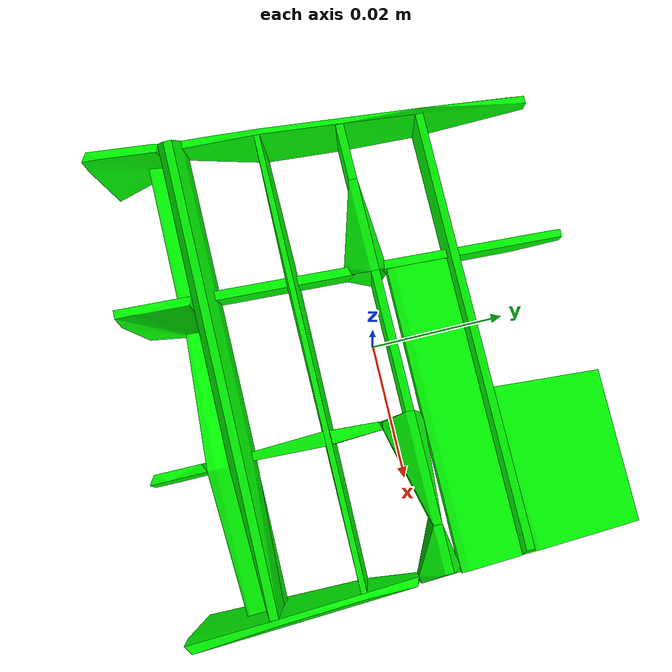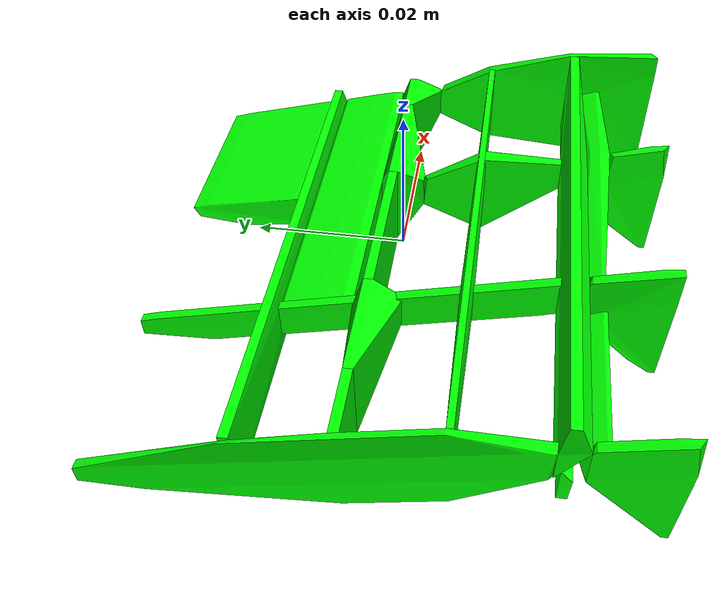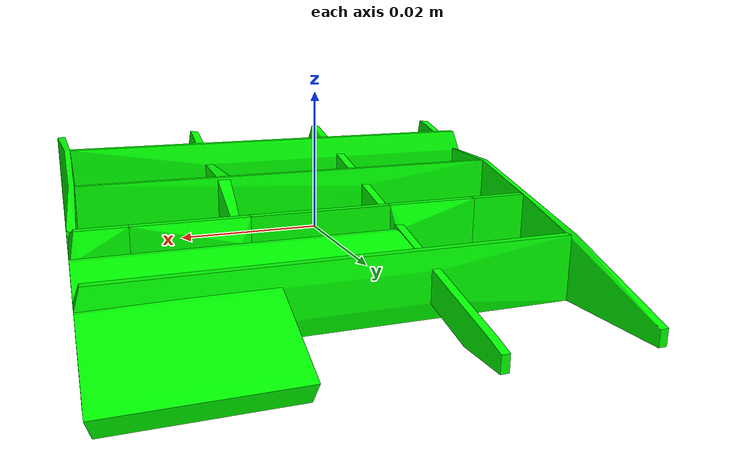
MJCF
<mujoco model="shapenet4-18">
  <asset>
    <mesh file="meshes/shapenet4-18/shapenet4-18_0.stl" name="shapenet4-18_0" scale="0.1 0.1 0.1"/>
    <mesh file="meshes/shapenet4-18/shapenet4-18_1.stl" name="shapenet4-18_1" scale="0.1 0.1 0.1"/>
    <mesh file="meshes/shapenet4-18/shapenet4-18_2.stl" name="shapenet4-18_2" scale="0.1 0.1 0.1"/>
    <mesh file="meshes/shapenet4-18/shapenet4-18_3.stl" name="shapenet4-18_3" scale="0.1 0.1 0.1"/>
    <mesh file="meshes/shapenet4-18/shapenet4-18_4.stl" name="shapenet4-18_4" scale="0.1 0.1 0.1"/>
    <mesh file="meshes/shapenet4-18/shapenet4-18_5.stl" name="shapenet4-18_5" scale="0.1 0.1 0.1"/>
    <mesh file="meshes/shapenet4-18/shapenet4-18_6.stl" name="shapenet4-18_6" scale="0.1 0.1 0.1"/>
    <mesh file="meshes/shapenet4-18/shapenet4-18_7.stl" name="shapenet4-18_7" scale="0.1 0.1 0.1"/>
    <mesh file="meshes/shapenet4-18/shapenet4-18_8.stl" name="shapenet4-18_8" scale="0.1 0.1 0.1"/>
    <mesh file="meshes/shapenet4-18/shapenet4-18_9.stl" name="shapenet4-18_9" scale="0.1 0.1 0.1"/>
    <mesh file="meshes/shapenet4-18/shapenet4-18_10.stl" name="shapenet4-18_10" scale="0.1 0.1 0.1"/>
    <mesh file="meshes/shapenet4-18/shapenet4-18_11.stl" name="shapenet4-18_11" scale="0.1 0.1 0.1"/>
    <mesh file="meshes/shapenet4-18/shapenet4-18_12.stl" name="shapenet4-18_12" scale="0.1 0.1 0.1"/>
    <mesh file="meshes/shapenet4-18/shapenet4-18_13.stl" name="shapenet4-18_13" scale="0.1 0.1 0.1"/>
    <mesh file="meshes/shapenet4-18/shapenet4-18_14.stl" name="shapenet4-18_14" scale="0.1 0.1 0.1"/>
    <mesh file="meshes/shapenet4-18/shapenet4-18_15.stl" name="shapenet4-18_15" scale="0.1 0.1 0.1"/>
    <mesh file="meshes/shapenet4-18/shapenet4-18_16.stl" name="shapenet4-18_16" scale="0.1 0.1 0.1"/>
    <mesh file="meshes/shapenet4-18/shapenet4-18_17.stl" name="shapenet4-18_17" scale="0.1 0.1 0.1"/>
    <mesh file="meshes/shapenet4-18/shapenet4-18_18.stl" name="shapenet4-18_18" scale="0.1 0.1 0.1"/>
    <mesh file="meshes/shapenet4-18/shapenet4-18_19.stl" name="shapenet4-18_19" scale="0.1 0.1 0.1"/>
  </asset>
  <worldbody>
    <body>
      <body name="collision">
        <geom pos="0 0 0" mesh="shapenet4-18_0" type="mesh" solimp="0.998 0.998 0.001" solref="0.001 1" density="100" friction="0.95 0.3 0.1" rgba="0 1 0 1" group="1" condim="4"/>
        <geom pos="0 0 0" mesh="shapenet4-18_1" type="mesh" solimp="0.998 0.998 0.001" solref="0.001 1" density="100" friction="0.95 0.3 0.1" rgba="0 1 0 1" group="1" condim="4"/>
        <geom pos="0 0 0" mesh="shapenet4-18_2" type="mesh" solimp="0.998 0.998 0.001" solref="0.001 1" density="100" friction="0.95 0.3 0.1" rgba="0 1 0 1" group="1" condim="4"/>
        <geom pos="0 0 0" mesh="shapenet4-18_3" type="mesh" solimp="0.998 0.998 0.001" solref="0.001 1" density="100" friction="0.95 0.3 0.1" rgba="0 1 0 1" group="1" condim="4"/>
        <geom pos="0 0 0" mesh="shapenet4-18_4" type="mesh" solimp="0.998 0.998 0.001" solref="0.001 1" density="100" friction="0.95 0.3 0.1" rgba="0 1 0 1" group="1" condim="4"/>
        <geom pos="0 0 0" mesh="shapenet4-18_5" type="mesh" solimp="0.998 0.998 0.001" solref="0.001 1" density="100" friction="0.95 0.3 0.1" rgba="0 1 0 1" group="1" condim="4"/>
        <geom pos="0 0 0" mesh="shapenet4-18_6" type="mesh" solimp="0.998 0.998 0.001" solref="0.001 1" density="100" friction="0.95 0.3 0.1" rgba="0 1 0 1" group="1" condim="4"/>
        <geom pos="0 0 0" mesh="shapenet4-18_7" type="mesh" solimp="0.998 0.998 0.001" solref="0.001 1" density="100" friction="0.95 0.3 0.1" rgba="0 1 0 1" group="1" condim="4"/>
        <geom pos="0 0 0" mesh="shapenet4-18_8" type="mesh" solimp="0.998 0.998 0.001" solref="0.001 1" density="100" friction="0.95 0.3 0.1" rgba="0 1 0 1" group="1" condim="4"/>
        <geom pos="0 0 0" mesh="shapenet4-18_9" type="mesh" solimp="0.998 0.998 0.001" solref="0.001 1" density="100" friction="0.95 0.3 0.1" rgba="0 1 0 1" group="1" condim="4"/>
        <geom pos="0 0 0" mesh="shapenet4-18_10" type="mesh" solimp="0.998 0.998 0.001" solref="0.001 1" density="100" friction="0.95 0.3 0.1" rgba="0 1 0 1" group="1" condim="4"/>
        <geom pos="0 0 0" mesh="shapenet4-18_11" type="mesh" solimp="0.998 0.998 0.001" solref="0.001 1" density="100" friction="0.95 0.3 0.1" rgba="0 1 0 1" group="1" condim="4"/>
        <geom pos="0 0 0" mesh="shapenet4-18_12" type="mesh" solimp="0.998 0.998 0.001" solref="0.001 1" density="100" friction="0.95 0.3 0.1" rgba="0 1 0 1" group="1" condim="4"/>
        <geom pos="0 0 0" mesh="shapenet4-18_13" type="mesh" solimp="0.998 0.998 0.001" solref="0.001 1" density="100" friction="0.95 0.3 0.1" rgba="0 1 0 1" group="1" condim="4"/>
        <geom pos="0 0 0" mesh="shapenet4-18_14" type="mesh" solimp="0.998 0.998 0.001" solref="0.001 1" density="100" friction="0.95 0.3 0.1" rgba="0 1 0 1" group="1" condim="4"/>
        <geom pos="0 0 0" mesh="shapenet4-18_15" type="mesh" solimp="0.998 0.998 0.001" solref="0.001 1" density="100" friction="0.95 0.3 0.1" rgba="0 1 0 1" group="1" condim="4"/>
        <geom pos="0 0 0" mesh="shapenet4-18_16" type="mesh" solimp="0.998 0.998 0.001" solref="0.001 1" density="100" friction="0.95 0.3 0.1" rgba="0 1 0 1" group="1" condim="4"/>
        <geom pos="0 0 0" mesh="shapenet4-18_17" type="mesh" solimp="0.998 0.998 0.001" solref="0.001 1" density="100" friction="0.95 0.3 0.1" rgba="0 1 0 1" group="1" condim="4"/>
        <geom pos="0 0 0" mesh="shapenet4-18_18" type="mesh" solimp="0.998 0.998 0.001" solref="0.001 1" density="100" friction="0.95 0.3 0.1" rgba="0 1 0 1" group="1" condim="4"/>
        <geom pos="0 0 0" mesh="shapenet4-18_19" type="mesh" solimp="0.998 0.998 0.001" solref="0.001 1" density="100" friction="0.95 0.3 0.1" rgba="0 1 0 1" group="1" condim="4"/>
      </body>
      <body name="visual">
        <geom pos="0 0 0" mesh="shapenet4-18_0" type="mesh" rgba="0 1 0 1" conaffinity="0" contype="0" group="0" mass="0.0001"/>
        <geom pos="0 0 0" mesh="shapenet4-18_1" type="mesh" rgba="0 1 0 1" conaffinity="0" contype="0" group="0" mass="0.0001"/>
        <geom pos="0 0 0" mesh="shapenet4-18_2" type="mesh" rgba="0 1 0 1" conaffinity="0" contype="0" group="0" mass="0.0001"/>
        <geom pos="0 0 0" mesh="shapenet4-18_3" type="mesh" rgba="0 1 0 1" conaffinity="0" contype="0" group="0" mass="0.0001"/>
        <geom pos="0 0 0" mesh="shapenet4-18_4" type="mesh" rgba="0 1 0 1" conaffinity="0" contype="0" group="0" mass="0.0001"/>
        <geom pos="0 0 0" mesh="shapenet4-18_5" type="mesh" rgba="0 1 0 1" conaffinity="0" contype="0" group="0" mass="0.0001"/>
        <geom pos="0 0 0" mesh="shapenet4-18_6" type="mesh" rgba="0 1 0 1" conaffinity="0" contype="0" group="0" mass="0.0001"/>
        <geom pos="0 0 0" mesh="shapenet4-18_7" type="mesh" rgba="0 1 0 1" conaffinity="0" contype="0" group="0" mass="0.0001"/>
        <geom pos="0 0 0" mesh="shapenet4-18_8" type="mesh" rgba="0 1 0 1" conaffinity="0" contype="0" group="0" mass="0.0001"/>
        <geom pos="0 0 0" mesh="shapenet4-18_9" type="mesh" rgba="0 1 0 1" conaffinity="0" contype="0" group="0" mass="0.0001"/>
        <geom pos="0 0 0" mesh="shapenet4-18_10" type="mesh" rgba="0 1 0 1" conaffinity="0" contype="0" group="0" mass="0.0001"/>
        <geom pos="0 0 0" mesh="shapenet4-18_11" type="mesh" rgba="0 1 0 1" conaffinity="0" contype="0" group="0" mass="0.0001"/>
        <geom pos="0 0 0" mesh="shapenet4-18_12" type="mesh" rgba="0 1 0 1" conaffinity="0" contype="0" group="0" mass="0.0001"/>
        <geom pos="0 0 0" mesh="shapenet4-18_13" type="mesh" rgba="0 1 0 1" conaffinity="0" contype="0" group="0" mass="0.0001"/>
        <geom pos="0 0 0" mesh="shapenet4-18_14" type="mesh" rgba="0 1 0 1" conaffinity="0" contype="0" group="0" mass="0.0001"/>
        <geom pos="0 0 0" mesh="shapenet4-18_15" type="mesh" rgba="0 1 0 1" conaffinity="0" contype="0" group="0" mass="0.0001"/>
        <geom pos="0 0 0" mesh="shapenet4-18_16" type="mesh" rgba="0 1 0 1" conaffinity="0" contype="0" group="0" mass="0.0001"/>
        <geom pos="0 0 0" mesh="shapenet4-18_17" type="mesh" rgba="0 1 0 1" conaffinity="0" contype="0" group="0" mass="0.0001"/>
        <geom pos="0 0 0" mesh="shapenet4-18_18" type="mesh" rgba="0 1 0 1" conaffinity="0" contype="0" group="0" mass="0.0001"/>
        <geom pos="0 0 0" mesh="shapenet4-18_19" type="mesh" rgba="0 1 0 1" conaffinity="0" contype="0" group="0" mass="0.0001"/>
      </body>
      <site rgba="0 0 0 0" size="0.005" pos="0 0 -0.06" name="bottom_site"/>
      <site rgba="0 0 0 0" size="0.005" pos="0 0 0.04" name="top_site"/>
      <site rgba="0 0 0 0" size="0.005" pos="0.025 0.025 0" name="horizontal_radius_site"/>
    </body>
  </worldbody>
</mujoco>
